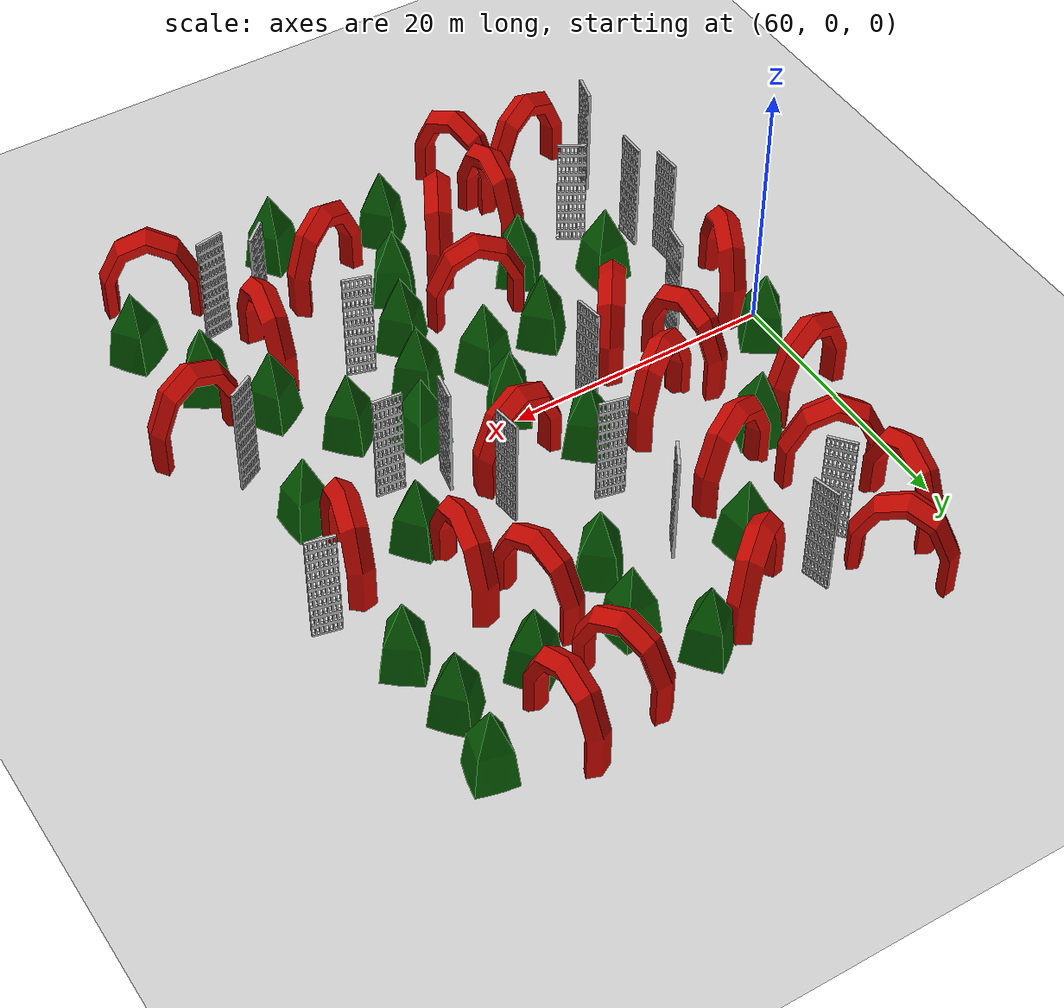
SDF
<sdf version="1.4">
 <world name="default">
  <model name="ground_plane">
   <static>1</static>
   <link name="link">
    <collision name="collision">
     <geometry><plane><normal>0 0 1</normal><size>1000 1000</size></plane></geometry>
     <surface>
      <contact><collide_bitmask>65535</collide_bitmask></contact>
      <friction><ode><mu>100</mu><mu2>50</mu2></ode></friction>
     </surface>
    </collision>
    <visual name="visual">
     <cast_shadows>0</cast_shadows>
     <geometry><plane><normal>0 0 1</normal><size>1000 1000</size></plane></geometry>
    </visual>
   </link>
  </model>
  <include><uri>model://sun</uri></include>
  <include>
   <name>mixedfence_high21</name>
   <uri>model://fence_high</uri>
   <pose>62.84683322906494 -17.883500576019287 0 0 0 2.89560277946</pose>
   <static>true</static>
  </include>
  <include>
   <name>mixedfence_high22</name>
   <uri>model://fence_high</uri>
   <pose>62.95156669616699 -12.879596710205078 0 0 0 6.26040720201</pose>
   <static>true</static>
  </include>
  <include>
   <name>mixedfence_high23</name>
   <uri>model://fence_high</uri>
   <pose>61.980812072753906 -7.969640731811523 0 0 0 3.18639496865</pose>
   <static>true</static>
  </include>
  <include>
   <name>mixedSimple U24</name>
   <uri>model://Simple U</uri>
   <pose>60.765347480773926 -3.114471435546875 0 0 0 1.1801071542</pose>
   <static>true</static>
  </include>
  <include>
   <name>mixedSimple Pyramid25</name>
   <uri>model://Simple Pyramid</uri>
   <pose>60.976491928100586 2.151121139526367 0 0 0 4.92527174921</pose>
   <static>true</static>
  </include>
  <include>
   <name>mixedSimple U26</name>
   <uri>model://Simple U</uri>
   <pose>61.854190826416016 8.51187515258789 0 0 0 3.42235307196</pose>
   <static>true</static>
  </include>
  <include>
   <name>mixedSimple U27</name>
   <uri>model://Simple U</uri>
   <pose>63.0920991897583 20.881183624267578 0 0 0 1.52574586514</pose>
   <static>true</static>
  </include>
  <include>
   <name>mixedSimple U28</name>
   <uri>model://Simple U</uri>
   <pose>65.76902294158936 -21.946853160858154 0 0 0 3.47481428747</pose>
   <static>true</static>
  </include>
  <include>
   <name>mixedSimple Pyramid29</name>
   <uri>model://Simple Pyramid</uri>
   <pose>66.7231273651123 -9.569788932800293 0 0 0 0.810857762289</pose>
   <static>true</static>
  </include>
  <include>
   <name>mixedfence_high30</name>
   <uri>model://fence_high</uri>
   <pose>65.76364040374756 -2.8554458618164062 0 0 0 6.12021142366</pose>
   <static>true</static>
  </include>
  <include>
   <name>mixedSimple U31</name>
   <uri>model://Simple U</uri>
   <pose>67.49201393127441 1.841653823852539 0 0 0 1.73628102952</pose>
   <static>true</static>
  </include>
  <include>
   <name>mixedSimple Pyramid32</name>
   <uri>model://Simple Pyramid</uri>
   <pose>66.7062873840332 9.739555358886719 0 0 0 0.416772407685</pose>
   <static>true</static>
  </include>
  <include>
   <name>mixedSimple U33</name>
   <uri>model://Simple U</uri>
   <pose>64.85230731964111 15.389671325683594 0 0 0 5.8295713993</pose>
   <static>true</static>
  </include>
  <include>
   <name>mixedSimple U34</name>
   <uri>model://Simple U</uri>
   <pose>66.15151596069336 24.842243194580078 0 0 0 5.34771330822</pose>
   <static>true</static>
  </include>
  <include>
   <name>mixedSimple U35</name>
   <uri>model://Simple U</uri>
   <pose>71.19148063659668 -23.019798159599304 0 0 0 5.04431257518</pose>
   <static>true</static>
  </include>
  <include>
   <name>mixedfence_high36</name>
   <uri>model://fence_high</uri>
   <pose>67.69036293029785 -14.490132331848145 0 0 0 1.04997417035</pose>
   <static>true</static>
  </include>
  <include>
   <name>mixedSimple U37</name>
   <uri>model://Simple U</uri>
   <pose>70.76003646850586 -2.562105178833008 0 0 0 4.11097479786</pose>
   <static>true</static>
  </include>
  <include>
   <name>mixedSimple U38</name>
   <uri>model://Simple U</uri>
   <pose>70.89627647399902 12.477073669433594 0 0 0 0.396485053839</pose>
   <static>true</static>
  </include>
  <include>
   <name>mixedfence_high39</name>
   <uri>model://fence_high</uri>
   <pose>68.45999717712402 18.8587646484375 0 0 0 0.694914895194</pose>
   <static>true</static>
  </include>
  <include>
   <name>mixedfence_high40</name>
   <uri>model://fence_high</uri>
   <pose>70.97279167175293 23.49862289428711 0 0 0 3.38569434141</pose>
   <static>true</static>
  </include>
  <include>
   <name>mixedSimple U41</name>
   <uri>model://Simple U</uri>
   <pose>71.24350929260254 -18.015068531036377 0 0 0 4.68209342863</pose>
   <static>true</static>
  </include>
  <include>
   <name>mixedSimple Pyramid42</name>
   <uri>model://Simple Pyramid</uri>
   <pose>72.27501487731934 -12.48239803314209 0 0 0 4.82942344727</pose>
   <static>true</static>
  </include>
  <include>
   <name>mixedSimple Pyramid43</name>
   <uri>model://Simple Pyramid</uri>
   <pose>74.27173233032227 -6.128337860107422 0 0 0 1.55549777062</pose>
   <static>true</static>
  </include>
  <include>
   <name>mixedSimple U44</name>
   <uri>model://Simple U</uri>
   <pose>71.55517578125 4.764106750488281 0 0 0 0.565246198217</pose>
   <static>true</static>
  </include>
  <include>
   <name>mixedSimple Pyramid45</name>
   <uri>model://Simple Pyramid</uri>
   <pose>73.25439262390137 17.42217254638672 0 0 0 2.50596702421</pose>
   <static>true</static>
  </include>
  <include>
   <name>mixedSimple U46</name>
   <uri>model://Simple U</uri>
   <pose>76.17858123779297 -17.181349754333496 0 0 0 4.21338538886</pose>
   <static>true</static>
  </include>
  <include>
   <name>mixedSimple U47</name>
   <uri>model://Simple U</uri>
   <pose>76.92872428894043 -10.64038372039795 0 0 0 2.92625926575</pose>
   <static>true</static>
  </include>
  <include>
   <name>mixedfence_high48</name>
   <uri>model://fence_high</uri>
   <pose>75.09059524536133 -0.05286407470703125 0 0 0 0.151177512139</pose>
   <static>true</static>
  </include>
  <include>
   <name>mixedSimple Pyramid49</name>
   <uri>model://Simple Pyramid</uri>
   <pose>77.25954818725586 4.457752227783203 0 0 0 3.20527720416</pose>
   <static>true</static>
  </include>
  <include>
   <name>mixedfence_high50</name>
   <uri>model://fence_high</uri>
   <pose>77.39667129516602 9.460872650146484 0 0 0 4.49451357773</pose>
   <static>true</static>
  </include>
  <include>
   <name>mixedfence_high51</name>
   <uri>model://fence_high</uri>
   <pose>78.04925537109375 15.987144470214844 0 0 0 2.61072991504</pose>
   <static>true</static>
  </include>
  <include>
   <name>mixedSimple U52</name>
   <uri>model://Simple U</uri>
   <pose>75.71299171447754 21.892215728759766 0 0 0 3.79151738051</pose>
   <static>true</static>
  </include>
  <include>
   <name>mixedSimple Pyramid53</name>
   <uri>model://Simple Pyramid</uri>
   <pose>78.53911590576172 -21.594727754592896 0 0 0 1.56284280016</pose>
   <static>true</static>
  </include>
  <include>
   <name>mixedSimple Pyramid54</name>
   <uri>model://Simple Pyramid</uri>
   <pose>80.92833137512207 -15.60340690612793 0 0 0 4.96880198164</pose>
   <static>true</static>
  </include>
  <include>
   <name>mixedSimple Pyramid55</name>
   <uri>model://Simple Pyramid</uri>
   <pose>79.26327514648438 -5.761556625366211 0 0 0 2.8266058562</pose>
   <static>true</static>
  </include>
  <include>
   <name>mixedSimple Pyramid56</name>
   <uri>model://Simple Pyramid</uri>
   <pose>80.19802474975586 -0.8446197509765625 0 0 0 0.314384963302</pose>
   <static>true</static>
  </include>
  <include>
   <name>mixedSimple Pyramid57</name>
   <uri>model://Simple Pyramid</uri>
   <pose>80.45305442810059 23.499019622802734 0 0 0 1.47152055813</pose>
   <static>true</static>
  </include>
  <include>
   <name>mixedSimple U58</name>
   <uri>model://Simple U</uri>
   <pose>84.68115234375 -18.914956092834473 0 0 0 3.60273993035</pose>
   <static>true</static>
  </include>
  <include>
   <name>mixedSimple Pyramid59</name>
   <uri>model://Simple Pyramid</uri>
   <pose>82.92387008666992 -11.013434410095215 0 0 0 3.12699412879</pose>
   <static>true</static>
  </include>
  <include>
   <name>mixedSimple Pyramid60</name>
   <uri>model://Simple Pyramid</uri>
   <pose>84.41860961914062 -6.236846923828125 0 0 0 6.25061018556</pose>
   <static>true</static>
  </include>
  <include>
   <name>mixedSimple U61</name>
   <uri>model://Simple U</uri>
   <pose>82.33234024047852 3.6824913024902344 0 0 0 3.37791816114</pose>
   <static>true</static>
  </include>
  <include>
   <name>mixedfence_high62</name>
   <uri>model://fence_high</uri>
   <pose>85.07080459594727 7.871864318847656 0 0 0 3.26436791803</pose>
   <static>true</static>
  </include>
  <include>
   <name>mixedSimple Pyramid63</name>
   <uri>model://Simple Pyramid</uri>
   <pose>82.84909057617188 14.568828582763672 0 0 0 1.65981112346</pose>
   <static>true</static>
  </include>
  <include>
   <name>mixedSimple Pyramid64</name>
   <uri>model://Simple Pyramid</uri>
   <pose>83.69162368774414 19.502403259277344 0 0 0 4.05665374006</pose>
   <static>true</static>
  </include>
  <include>
   <name>mixedSimple Pyramid65</name>
   <uri>model://Simple Pyramid</uri>
   <pose>86.62923812866211 -23.52526867389679 0 0 0 6.06861775796</pose>
   <static>true</static>
  </include>
  <include>
   <name>mixedfence_high66</name>
   <uri>model://fence_high</uri>
   <pose>87.86127853393555 -10.193649291992188 0 0 0 1.27668682373</pose>
   <static>true</static>
  </include>
  <include>
   <name>mixedSimple Pyramid67</name>
   <uri>model://Simple Pyramid</uri>
   <pose>86.63426208496094 -1.7489852905273438 0 0 0 2.56137837215</pose>
   <static>true</static>
  </include>
  <include>
   <name>mixedfence_high68</name>
   <uri>model://fence_high</uri>
   <pose>87.33230972290039 3.2070980072021484 0 0 0 2.96384583528</pose>
   <static>true</static>
  </include>
  <include>
   <name>mixedSimple U69</name>
   <uri>model://Simple U</uri>
   <pose>87.82990264892578 15.060272216796875 0 0 0 1.77884915844</pose>
   <static>true</static>
  </include>
  <include>
   <name>mixedSimple U70</name>
   <uri>model://Simple U</uri>
   <pose>86.83786010742188 23.394855499267578 0 0 0 5.05545718859</pose>
   <static>true</static>
  </include>
  <include>
   <name>mixedfence_high71</name>
   <uri>model://fence_high</uri>
   <pose>89.6475601196289 -18.294607162475586 0 0 0 5.44663323756</pose>
   <static>true</static>
  </include>
  <include>
   <name>mixedSimple U72</name>
   <uri>model://Simple U</uri>
   <pose>92.03076171875 -13.893427848815918 0 0 0 4.59889612447</pose>
   <static>true</static>
  </include>
  <include>
   <name>mixedSimple Pyramid73</name>
   <uri>model://Simple Pyramid</uri>
   <pose>90.69203567504883 -4.678918838500977 0 0 0 6.24029571622</pose>
   <static>true</static>
  </include>
  <include>
   <name>mixedfence_high74</name>
   <uri>model://fence_high</uri>
   <pose>91.80204391479492 0.9551010131835938 0 0 0 1.47106330234</pose>
   <static>true</static>
  </include>
  <include>
   <name>mixedSimple Pyramid75</name>
   <uri>model://Simple Pyramid</uri>
   <pose>91.50315856933594 5.973691940307617 0 0 0 1.47343189382</pose>
   <static>true</static>
  </include>
  <include>
   <name>mixedSimple U76</name>
   <uri>model://Simple U</uri>
   <pose>90.8543930053711 10.936466217041016 0 0 0 1.46157229918</pose>
   <static>true</static>
  </include>
  <include>
   <name>mixedSimple Pyramid77</name>
   <uri>model://Simple Pyramid</uri>
   <pose>90.73937225341797 19.13274383544922 0 0 0 3.03913086531</pose>
   <static>true</static>
  </include>
  <include>
   <name>mixedSimple U78</name>
   <uri>model://Simple U</uri>
   <pose>91.71477127075195 24.519927978515625 0 0 0 1.64354666211</pose>
   <static>true</static>
  </include>
  <include>
   <name>mixedfence_high79</name>
   <uri>model://fence_high</uri>
   <pose>94.64567947387695 -18.55696439743042 0 0 0 1.73838715348</pose>
   <static>true</static>
  </include>
  <include>
   <name>mixedSimple Pyramid80</name>
   <uri>model://Simple Pyramid</uri>
   <pose>94.08624649047852 -9.329986572265625 0 0 0 1.35810507299</pose>
   <static>true</static>
  </include>
  <include>
   <name>mixedSimple U81</name>
   <uri>model://Simple U</uri>
   <pose>96.31408309936523 -23.275697469711304 0 0 0 2.63381322314</pose>
   <static>true</static>
  </include>
  <include>
   <name>mixedSimple Pyramid82</name>
   <uri>model://Simple Pyramid</uri>
   <pose>97.03466796875 -13.788798332214355 0 0 0 0.213949997977</pose>
   <static>true</static>
  </include>
  <include>
   <name>mixedfence_high83</name>
   <uri>model://fence_high</uri>
   <pose>97.354736328125 -5.227622985839844 0 0 0 5.24259508521</pose>
   <static>true</static>
  </include>
  <include>
   <name>mixedSimple Pyramid84</name>
   <uri>model://Simple Pyramid</uri>
   <pose>96.79000473022461 0.5424575805664062 0 0 0 5.55410429432</pose>
   <static>true</static>
  </include>
  <include>
   <name>mixedSimple U85</name>
   <uri>model://Simple U</uri>
   <pose>96.50220108032227 5.729576110839844 0 0 0 4.47688929956</pose>
   <static>true</static>
  </include>
  <include>
   <name>mixedfence_high86</name>
   <uri>model://fence_high</uri>
   <pose>99.27559661865234 9.895904541015625 0 0 0 4.49036899075</pose>
   <static>true</static>
  </include>
  <include>
   <name>mixedSimple Pyramid87</name>
   <uri>model://Simple Pyramid</uri>
   <pose>97.42243194580078 14.545185089111328 0 0 0 1.71468684049</pose>
   <static>true</static>
  </include>
  <include>
   <name>mixedSimple Pyramid88</name>
   <uri>model://Simple Pyramid</uri>
   <pose>96.61167526245117 19.484081268310547 0 0 0 1.50607577808</pose>
   <static>true</static>
  </include>
  <include>
   <name>mixedSimple Pyramid89</name>
   <uri>model://Simple Pyramid</uri>
   <pose>97.12859344482422 24.46231460571289 0 0 0 3.69778261805</pose>
   <static>true</static>
  </include>
  <include>
   <name>mixedSimple Pyramid90</name>
   <uri>model://Simple Pyramid</uri>
   <pose>99.57148742675781 -19.443764686584473 0 0 0 6.09458789613</pose>
   <static>true</static>
  </include>
  <include>
   <name>mixedSimple U91</name>
   <uri>model://Simple U</uri>
   <pose>99.78152084350586 -9.6049222946167 0 0 0 0.210415702936</pose>
   <static>true</static>
  </include>
 </world>
</sdf>
